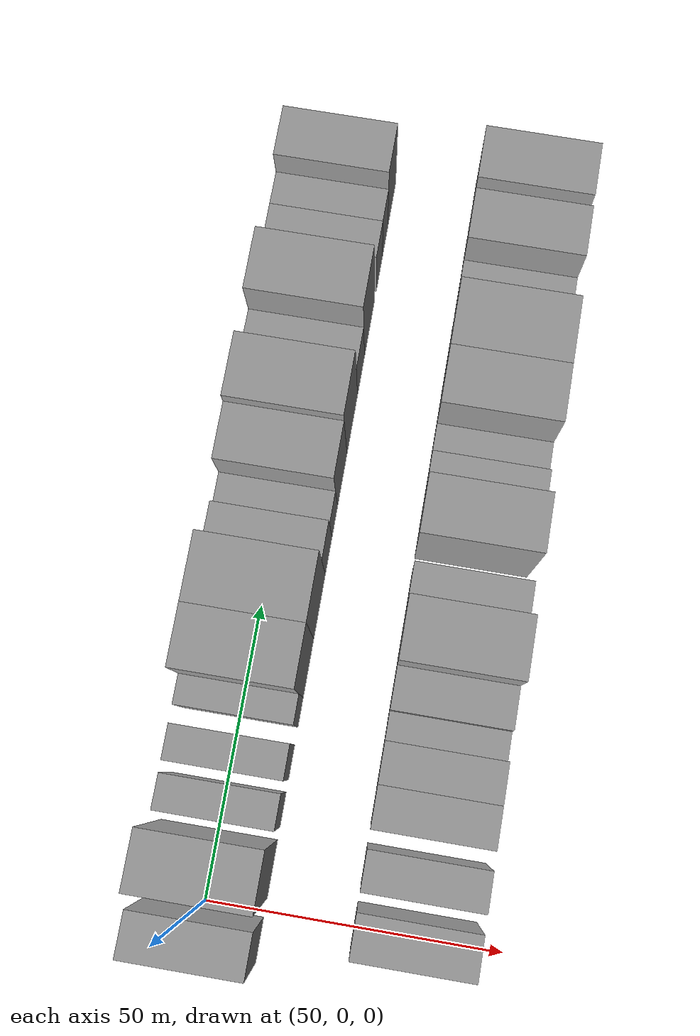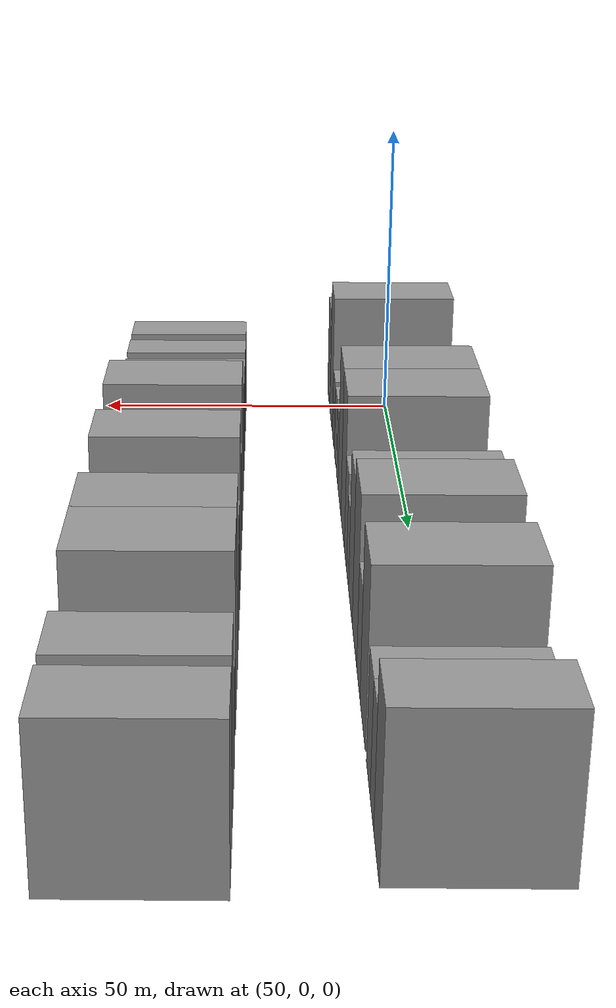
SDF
<sdf version="1.6">
 <world name="default">
  <model name="building_32">
   <static>1</static>
   <pose>50.0000 -4.6984 0 0.000000 0.000000 0.000000</pose>
   <link name="link">
    <pose>0 0 9.00 0 0 0</pose>
    <collision name="collision"><geometry><box><size>20.0000 7.3933 18.0000</size></box></geometry></collision>
    <visual name="visual">
     <cast_shadows>0</cast_shadows>
     <geometry><box><size>20.0000 7.3933 18.0000</size></box></geometry>
     <material>
      <script>
       <uri>model://grey_wall/materials/scripts</uri>
       <uri>model://grey_wall/materials/textures</uri>
       <name>vrc/grey_wall</name>
      </script>
     </material>
    </visual>
   </link>
  </model>
  <model name="building_33">
   <static>1</static>
   <pose>50.0000 6.8137 0 0.000000 0.000000 0.000000</pose>
   <link name="link">
    <pose>0 0 12.00 0 0 0</pose>
    <collision name="collision"><geometry><box><size>20.0000 9.6309 24.0000</size></box></geometry></collision>
    <visual name="visual">
     <cast_shadows>0</cast_shadows>
     <geometry><box><size>20.0000 9.6309 24.0000</size></box></geometry>
     <material>
      <script>
       <uri>model://grey_wall/materials/scripts</uri>
       <uri>model://grey_wall/materials/textures</uri>
       <name>vrc/grey_wall</name>
      </script>
     </material>
    </visual>
   </link>
  </model>
  <model name="building_34">
   <static>1</static>
   <pose>50.0000 16.5989 0 0.000000 0.000000 0.000000</pose>
   <link name="link">
    <pose>0 0 6.00 0 0 0</pose>
    <collision name="collision"><geometry><box><size>20.0000 5.9396 12.0000</size></box></geometry></collision>
    <visual name="visual">
     <cast_shadows>0</cast_shadows>
     <geometry><box><size>20.0000 5.9396 12.0000</size></box></geometry>
     <material>
      <script>
       <uri>model://grey_wall/materials/scripts</uri>
       <uri>model://grey_wall/materials/textures</uri>
       <name>vrc/grey_wall</name>
      </script>
     </material>
    </visual>
   </link>
  </model>
  <model name="building_35">
   <static>1</static>
   <pose>50.0000 24.5492 0 0.000000 0.000000 0.000000</pose>
   <link name="link">
    <pose>0 0 6.00 0 0 0</pose>
    <collision name="collision"><geometry><box><size>20.0000 5.9609 12.0000</size></box></geometry></collision>
    <visual name="visual">
     <cast_shadows>0</cast_shadows>
     <geometry><box><size>20.0000 5.9609 12.0000</size></box></geometry>
     <material>
      <script>
       <uri>model://grey_wall/materials/scripts</uri>
       <uri>model://grey_wall/materials/textures</uri>
       <name>vrc/grey_wall</name>
      </script>
     </material>
    </visual>
   </link>
  </model>
  <model name="building_36">
   <static>1</static>
   <pose>50.0000 33.0707 0 0.000000 0.000000 0.000000</pose>
   <link name="link">
    <pose>0 0 6.00 0 0 0</pose>
    <collision name="collision"><geometry><box><size>20.0000 5.0821 12.0000</size></box></geometry></collision>
    <visual name="visual">
     <cast_shadows>0</cast_shadows>
     <geometry><box><size>20.0000 5.0821 12.0000</size></box></geometry>
     <material>
      <script>
       <uri>model://grey_wall/materials/scripts</uri>
       <uri>model://grey_wall/materials/textures</uri>
       <name>vrc/grey_wall</name>
      </script>
     </material>
    </visual>
   </link>
  </model>
  <model name="building_37">
   <static>1</static>
   <pose>50.0000 40.7650 0 0.000000 0.000000 0.000000</pose>
   <link name="link">
    <pose>0 0 12.00 0 0 0</pose>
    <collision name="collision"><geometry><box><size>20.0000 10.3065 24.0000</size></box></geometry></collision>
    <visual name="visual">
     <cast_shadows>0</cast_shadows>
     <geometry><box><size>20.0000 10.3065 24.0000</size></box></geometry>
     <material>
      <script>
       <uri>model://grey_wall/materials/scripts</uri>
       <uri>model://grey_wall/materials/textures</uri>
       <name>vrc/grey_wall</name>
      </script>
     </material>
    </visual>
   </link>
  </model>
  <model name="building_38">
   <static>1</static>
   <pose>50.0000 51.6528 0 0.000000 0.000000 0.000000</pose>
   <link name="link">
    <pose>0 0 12.00 0 0 0</pose>
    <collision name="collision"><geometry><box><size>20.0000 11.4691 24.0000</size></box></geometry></collision>
    <visual name="visual">
     <cast_shadows>0</cast_shadows>
     <geometry><box><size>20.0000 11.4691 24.0000</size></box></geometry>
     <material>
      <script>
       <uri>model://grey_wall/materials/scripts</uri>
       <uri>model://grey_wall/materials/textures</uri>
       <name>vrc/grey_wall</name>
      </script>
     </material>
    </visual>
   </link>
  </model>
  <model name="building_39">
   <static>1</static>
   <pose>50.0000 60.7605 0 0.000000 0.000000 0.000000</pose>
   <link name="link">
    <pose>0 0 7.50 0 0 0</pose>
    <collision name="collision"><geometry><box><size>20.0000 6.7464 15.0000</size></box></geometry></collision>
    <visual name="visual">
     <cast_shadows>0</cast_shadows>
     <geometry><box><size>20.0000 6.7464 15.0000</size></box></geometry>
     <material>
      <script>
       <uri>model://grey_wall/materials/scripts</uri>
       <uri>model://grey_wall/materials/textures</uri>
       <name>vrc/grey_wall</name>
      </script>
     </material>
    </visual>
   </link>
  </model>
  <model name="building_40">
   <static>1</static>
   <pose>50.0000 66.9853 0 0.000000 0.000000 0.000000</pose>
   <link name="link">
    <pose>0 0 6.00 0 0 0</pose>
    <collision name="collision"><geometry><box><size>20.0000 5.7031 12.0000</size></box></geometry></collision>
    <visual name="visual">
     <cast_shadows>0</cast_shadows>
     <geometry><box><size>20.0000 5.7031 12.0000</size></box></geometry>
     <material>
      <script>
       <uri>model://grey_wall/materials/scripts</uri>
       <uri>model://grey_wall/materials/textures</uri>
       <name>vrc/grey_wall</name>
      </script>
     </material>
    </visual>
   </link>
  </model>
  <model name="building_41">
   <static>1</static>
   <pose>50.0000 74.7066 0 0.000000 0.000000 0.000000</pose>
   <link name="link">
    <pose>0 0 10.50 0 0 0</pose>
    <collision name="collision"><geometry><box><size>20.0000 9.7396 21.0000</size></box></geometry></collision>
    <visual name="visual">
     <cast_shadows>0</cast_shadows>
     <geometry><box><size>20.0000 9.7396 21.0000</size></box></geometry>
     <material>
      <script>
       <uri>model://grey_wall/materials/scripts</uri>
       <uri>model://grey_wall/materials/textures</uri>
       <name>vrc/grey_wall</name>
      </script>
     </material>
    </visual>
   </link>
  </model>
  <model name="building_42">
   <static>1</static>
   <pose>50.0000 85.1169 0 0.000000 0.000000 0.000000</pose>
   <link name="link">
    <pose>0 0 12.00 0 0 0</pose>
    <collision name="collision"><geometry><box><size>20.0000 11.0810 24.0000</size></box></geometry></collision>
    <visual name="visual">
     <cast_shadows>0</cast_shadows>
     <geometry><box><size>20.0000 11.0810 24.0000</size></box></geometry>
     <material>
      <script>
       <uri>model://grey_wall/materials/scripts</uri>
       <uri>model://grey_wall/materials/textures</uri>
       <name>vrc/grey_wall</name>
      </script>
     </material>
    </visual>
   </link>
  </model>
  <model name="building_43">
   <static>1</static>
   <pose>50.0000 94.4049 0 0.000000 0.000000 0.000000</pose>
   <link name="link">
    <pose>0 0 7.50 0 0 0</pose>
    <collision name="collision"><geometry><box><size>20.0000 7.4949 15.0000</size></box></geometry></collision>
    <visual name="visual">
     <cast_shadows>0</cast_shadows>
     <geometry><box><size>20.0000 7.4949 15.0000</size></box></geometry>
     <material>
      <script>
       <uri>model://grey_wall/materials/scripts</uri>
       <uri>model://grey_wall/materials/textures</uri>
       <name>vrc/grey_wall</name>
      </script>
     </material>
    </visual>
   </link>
  </model>
  <model name="building_44">
   <static>1</static>
   <pose>50.0000 103.6315 0 0.000000 0.000000 0.000000</pose>
   <link name="link">
    <pose>0 0 12.00 0 0 0</pose>
    <collision name="collision"><geometry><box><size>20.0000 10.9583 24.0000</size></box></geometry></collision>
    <visual name="visual">
     <cast_shadows>0</cast_shadows>
     <geometry><box><size>20.0000 10.9583 24.0000</size></box></geometry>
     <material>
      <script>
       <uri>model://grey_wall/materials/scripts</uri>
       <uri>model://grey_wall/materials/textures</uri>
       <name>vrc/grey_wall</name>
      </script>
     </material>
    </visual>
   </link>
  </model>
  <model name="building_45">
   <static>1</static>
   <pose>50.0000 114.5147 0 0.000000 0.000000 0.000000</pose>
   <link name="link">
    <pose>0 0 7.50 0 0 0</pose>
    <collision name="collision"><geometry><box><size>20.0000 6.8081 15.0000</size></box></geometry></collision>
    <visual name="visual">
     <cast_shadows>0</cast_shadows>
     <geometry><box><size>20.0000 6.8081 15.0000</size></box></geometry>
     <material>
      <script>
       <uri>model://grey_wall/materials/scripts</uri>
       <uri>model://grey_wall/materials/textures</uri>
       <name>vrc/grey_wall</name>
      </script>
     </material>
    </visual>
   </link>
  </model>
  <model name="building_46">
   <static>1</static>
   <pose>50.0000 120.9398 0 0.000000 0.000000 0.000000</pose>
   <link name="link">
    <pose>0 0 7.50 0 0 0</pose>
    <collision name="collision"><geometry><box><size>20.0000 6.0420 15.0000</size></box></geometry></collision>
    <visual name="visual">
     <cast_shadows>0</cast_shadows>
     <geometry><box><size>20.0000 6.0420 15.0000</size></box></geometry>
     <material>
      <script>
       <uri>model://grey_wall/materials/scripts</uri>
       <uri>model://grey_wall/materials/textures</uri>
       <name>vrc/grey_wall</name>
      </script>
     </material>
    </visual>
   </link>
  </model>
  <model name="building_47">
   <static>1</static>
   <pose>50.0000 128.5634 0 0.000000 0.000000 0.000000</pose>
   <link name="link">
    <pose>0 0 10.50 0 0 0</pose>
    <collision name="collision"><geometry><box><size>20.0000 9.2053 21.0000</size></box></geometry></collision>
    <visual name="visual">
     <cast_shadows>0</cast_shadows>
     <geometry><box><size>20.0000 9.2053 21.0000</size></box></geometry>
     <material>
      <script>
       <uri>model://grey_wall/materials/scripts</uri>
       <uri>model://grey_wall/materials/textures</uri>
       <name>vrc/grey_wall</name>
      </script>
     </material>
    </visual>
   </link>
  </model>
  <model name="building_94">
   <static>1</static>
   <pose>85.0000 0.4489 0 0.000000 0.000000 0.000000</pose>
   <link name="link">
    <pose>0 0 7.50 0 0 0</pose>
    <collision name="collision"><geometry><box><size>20.0000 7.3271 15.0000</size></box></geometry></collision>
    <visual name="visual">
     <cast_shadows>0</cast_shadows>
     <geometry><box><size>20.0000 7.3271 15.0000</size></box></geometry>
     <material>
      <script>
       <uri>model://grey_wall/materials/scripts</uri>
       <uri>model://grey_wall/materials/textures</uri>
       <name>vrc/grey_wall</name>
      </script>
     </material>
    </visual>
   </link>
  </model>
  <model name="building_95">
   <static>1</static>
   <pose>85.0000 10.4039 0 0.000000 0.000000 0.000000</pose>
   <link name="link">
    <pose>0 0 7.50 0 0 0</pose>
    <collision name="collision"><geometry><box><size>20.0000 6.5830 15.0000</size></box></geometry></collision>
    <visual name="visual">
     <cast_shadows>0</cast_shadows>
     <geometry><box><size>20.0000 6.5830 15.0000</size></box></geometry>
     <material>
      <script>
       <uri>model://grey_wall/materials/scripts</uri>
       <uri>model://grey_wall/materials/textures</uri>
       <name>vrc/grey_wall</name>
      </script>
     </material>
    </visual>
   </link>
  </model>
  <model name="building_96">
   <static>1</static>
   <pose>85.0000 20.1801 0 0.000000 0.000000 0.000000</pose>
   <link name="link">
    <pose>0 0 7.50 0 0 0</pose>
    <collision name="collision"><geometry><box><size>20.0000 6.9695 15.0000</size></box></geometry></collision>
    <visual name="visual">
     <cast_shadows>0</cast_shadows>
     <geometry><box><size>20.0000 6.9695 15.0000</size></box></geometry>
     <material>
      <script>
       <uri>model://grey_wall/materials/scripts</uri>
       <uri>model://grey_wall/materials/textures</uri>
       <name>vrc/grey_wall</name>
      </script>
     </material>
    </visual>
   </link>
  </model>
  <model name="building_97">
   <static>1</static>
   <pose>85.0000 27.1184 0 0.000000 0.000000 0.000000</pose>
   <link name="link">
    <pose>0 0 7.50 0 0 0</pose>
    <collision name="collision"><geometry><box><size>20.0000 6.9072 15.0000</size></box></geometry></collision>
    <visual name="visual">
     <cast_shadows>0</cast_shadows>
     <geometry><box><size>20.0000 6.9072 15.0000</size></box></geometry>
     <material>
      <script>
       <uri>model://grey_wall/materials/scripts</uri>
       <uri>model://grey_wall/materials/textures</uri>
       <name>vrc/grey_wall</name>
      </script>
     </material>
    </visual>
   </link>
  </model>
  <model name="building_98">
   <static>1</static>
   <pose>85.0000 32.9930 0 0.000000 0.000000 0.000000</pose>
   <link name="link">
    <pose>0 0 6.00 0 0 0</pose>
    <collision name="collision"><geometry><box><size>20.0000 4.8420 12.0000</size></box></geometry></collision>
    <visual name="visual">
     <cast_shadows>0</cast_shadows>
     <geometry><box><size>20.0000 4.8420 12.0000</size></box></geometry>
     <material>
      <script>
       <uri>model://grey_wall/materials/scripts</uri>
       <uri>model://grey_wall/materials/textures</uri>
       <name>vrc/grey_wall</name>
      </script>
     </material>
    </visual>
   </link>
  </model>
  <model name="building_99">
   <static>1</static>
   <pose>85.0000 39.0330 0 0.000000 0.000000 0.000000</pose>
   <link name="link">
    <pose>0 0 7.50 0 0 0</pose>
    <collision name="collision"><geometry><box><size>20.0000 7.2379 15.0000</size></box></geometry></collision>
    <visual name="visual">
     <cast_shadows>0</cast_shadows>
     <geometry><box><size>20.0000 7.2379 15.0000</size></box></geometry>
     <material>
      <script>
       <uri>model://grey_wall/materials/scripts</uri>
       <uri>model://grey_wall/materials/textures</uri>
       <name>vrc/grey_wall</name>
      </script>
     </material>
    </visual>
   </link>
  </model>
  <model name="building_100">
   <static>1</static>
   <pose>85.0000 47.8926 0 0.000000 0.000000 0.000000</pose>
   <link name="link">
    <pose>0 0 12.00 0 0 0</pose>
    <collision name="collision"><geometry><box><size>20.0000 10.4815 24.0000</size></box></geometry></collision>
    <visual name="visual">
     <cast_shadows>0</cast_shadows>
     <geometry><box><size>20.0000 10.4815 24.0000</size></box></geometry>
     <material>
      <script>
       <uri>model://grey_wall/materials/scripts</uri>
       <uri>model://grey_wall/materials/textures</uri>
       <name>vrc/grey_wall</name>
      </script>
     </material>
    </visual>
   </link>
  </model>
  <model name="building_101">
   <static>1</static>
   <pose>85.0000 56.4817 0 0.000000 0.000000 0.000000</pose>
   <link name="link">
    <pose>0 0 7.50 0 0 0</pose>
    <collision name="collision"><geometry><box><size>20.0000 6.6966 15.0000</size></box></geometry></collision>
    <visual name="visual">
     <cast_shadows>0</cast_shadows>
     <geometry><box><size>20.0000 6.6966 15.0000</size></box></geometry>
     <material>
      <script>
       <uri>model://grey_wall/materials/scripts</uri>
       <uri>model://grey_wall/materials/textures</uri>
       <name>vrc/grey_wall</name>
      </script>
     </material>
    </visual>
   </link>
  </model>
  <model name="building_102">
   <static>1</static>
   <pose>85.0000 67.8008 0 0.000000 0.000000 0.000000</pose>
   <link name="link">
    <pose>0 0 12.00 0 0 0</pose>
    <collision name="collision"><geometry><box><size>20.0000 9.9417 24.0000</size></box></geometry></collision>
    <visual name="visual">
     <cast_shadows>0</cast_shadows>
     <geometry><box><size>20.0000 9.9417 24.0000</size></box></geometry>
     <material>
      <script>
       <uri>model://grey_wall/materials/scripts</uri>
       <uri>model://grey_wall/materials/textures</uri>
       <name>vrc/grey_wall</name>
      </script>
     </material>
    </visual>
   </link>
  </model>
  <model name="building_103">
   <static>1</static>
   <pose>85.0000 75.7834 0 0.000000 0.000000 0.000000</pose>
   <link name="link">
    <pose>0 0 7.50 0 0 0</pose>
    <collision name="collision"><geometry><box><size>20.0000 6.0234 15.0000</size></box></geometry></collision>
    <visual name="visual">
     <cast_shadows>0</cast_shadows>
     <geometry><box><size>20.0000 6.0234 15.0000</size></box></geometry>
     <material>
      <script>
       <uri>model://grey_wall/materials/scripts</uri>
       <uri>model://grey_wall/materials/textures</uri>
       <name>vrc/grey_wall</name>
      </script>
     </material>
    </visual>
   </link>
  </model>
  <model name="building_104">
   <static>1</static>
   <pose>85.0000 81.6017 0 0.000000 0.000000 0.000000</pose>
   <link name="link">
    <pose>0 0 6.00 0 0 0</pose>
    <collision name="collision"><geometry><box><size>20.0000 5.6132 12.0000</size></box></geometry></collision>
    <visual name="visual">
     <cast_shadows>0</cast_shadows>
     <geometry><box><size>20.0000 5.6132 12.0000</size></box></geometry>
     <material>
      <script>
       <uri>model://grey_wall/materials/scripts</uri>
       <uri>model://grey_wall/materials/textures</uri>
       <name>vrc/grey_wall</name>
      </script>
     </material>
    </visual>
   </link>
  </model>
  <model name="building_105">
   <static>1</static>
   <pose>85.0000 89.3883 0 0.000000 0.000000 0.000000</pose>
   <link name="link">
    <pose>0 0 12.00 0 0 0</pose>
    <collision name="collision"><geometry><box><size>20.0000 9.9600 24.0000</size></box></geometry></collision>
    <visual name="visual">
     <cast_shadows>0</cast_shadows>
     <geometry><box><size>20.0000 9.9600 24.0000</size></box></geometry>
     <material>
      <script>
       <uri>model://grey_wall/materials/scripts</uri>
       <uri>model://grey_wall/materials/textures</uri>
       <name>vrc/grey_wall</name>
      </script>
     </material>
    </visual>
   </link>
  </model>
  <model name="building_106">
   <static>1</static>
   <pose>85.0000 100.2218 0 0.000000 0.000000 0.000000</pose>
   <link name="link">
    <pose>0 0 12.00 0 0 0</pose>
    <collision name="collision"><geometry><box><size>20.0000 11.7071 24.0000</size></box></geometry></collision>
    <visual name="visual">
     <cast_shadows>0</cast_shadows>
     <geometry><box><size>20.0000 11.7071 24.0000</size></box></geometry>
     <material>
      <script>
       <uri>model://grey_wall/materials/scripts</uri>
       <uri>model://grey_wall/materials/textures</uri>
       <name>vrc/grey_wall</name>
      </script>
     </material>
    </visual>
   </link>
  </model>
  <model name="building_107">
   <static>1</static>
   <pose>85.0000 111.8036 0 0.000000 0.000000 0.000000</pose>
   <link name="link">
    <pose>0 0 6.00 0 0 0</pose>
    <collision name="collision"><geometry><box><size>20.0000 5.4563 12.0000</size></box></geometry></collision>
    <visual name="visual">
     <cast_shadows>0</cast_shadows>
     <geometry><box><size>20.0000 5.4563 12.0000</size></box></geometry>
     <material>
      <script>
       <uri>model://grey_wall/materials/scripts</uri>
       <uri>model://grey_wall/materials/textures</uri>
       <name>vrc/grey_wall</name>
      </script>
     </material>
    </visual>
   </link>
  </model>
  <model name="building_108">
   <static>1</static>
   <pose>85.0000 119.0933 0 0.000000 0.000000 0.000000</pose>
   <link name="link">
    <pose>0 0 10.50 0 0 0</pose>
    <collision name="collision"><geometry><box><size>20.0000 9.1231 21.0000</size></box></geometry></collision>
    <visual name="visual">
     <cast_shadows>0</cast_shadows>
     <geometry><box><size>20.0000 9.1231 21.0000</size></box></geometry>
     <material>
      <script>
       <uri>model://grey_wall/materials/scripts</uri>
       <uri>model://grey_wall/materials/textures</uri>
       <name>vrc/grey_wall</name>
      </script>
     </material>
    </visual>
   </link>
  </model>
  <model name="building_109">
   <static>1</static>
   <pose>85.0000 130.4917 0 0.000000 0.000000 0.000000</pose>
   <link name="link">
    <pose>0 0 10.50 0 0 0</pose>
    <collision name="collision"><geometry><box><size>20.0000 9.6737 21.0000</size></box></geometry></collision>
    <visual name="visual">
     <cast_shadows>0</cast_shadows>
     <geometry><box><size>20.0000 9.6737 21.0000</size></box></geometry>
     <material>
      <script>
       <uri>model://grey_wall/materials/scripts</uri>
       <uri>model://grey_wall/materials/textures</uri>
       <name>vrc/grey_wall</name>
      </script>
     </material>
    </visual>
   </link>
  </model>
 </world>
</sdf>
